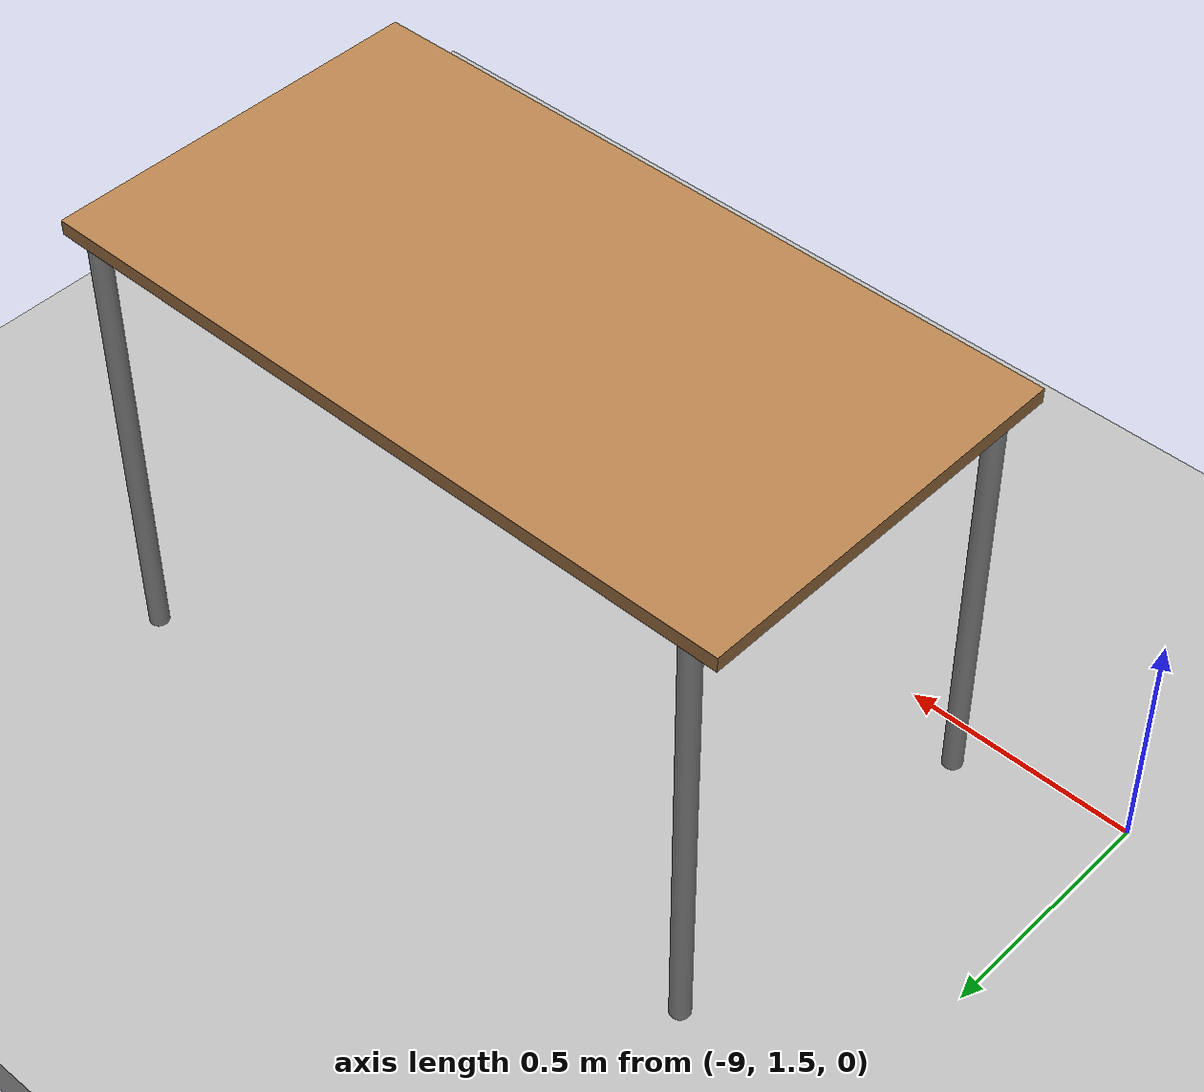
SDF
<sdf version="1.6">
 <world name="hospital">
  <include><uri>model://sun</uri></include>
  <include><uri>model://ground_plane</uri></include>
  <model name="floor">
   <static>true</static>
   <link name="link"><visual name="visual"><geometry><box><size>30 10 0.1</size></box></geometry></visual></link>
  </model>
  <model name="wall_left">
   <static>true</static>
   <pose>0 5 1 0 0 0</pose>
   <link name="link">
    <collision name="collision"><geometry><box><size>30 0.2 2.5</size></box></geometry></collision>
   </link>
  </model>
  <model name="wall_right">
   <static>true</static>
   <pose>0 -5 1 0 0 0</pose>
   <link name="link">
    <collision name="collision"><geometry><box><size>30 0.2 2.5</size></box></geometry></collision>
   </link>
  </model>
  <model name="ICU_room">
   <static>true</static>
   <pose>8 2 0 0 0 0</pose>
   <link name="link">
    <collision name="collision"><geometry><box><size>5 4 2.5</size></box></geometry></collision>
   </link>
  </model>
  <model name="pharmacy_room">
   <static>true</static>
   <pose>-8 2 0 0 0 0</pose>
   <link name="link">
    <collision name="collision"><geometry><box><size>5 4 2.5</size></box></geometry></collision>
   </link>
  </model>
  <include><uri>model://table</uri><pose>-8 2 0 0 0 0</pose></include>
  <model name="door">
   <static>true</static>
   <pose>4 0 1 0 0 0</pose>
   <link name="link">
    <collision name="collision"><geometry><box><size>1 0.1 2</size></box></geometry></collision>
   </link>
  </model>
 </world>
</sdf>

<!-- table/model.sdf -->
<sdf version="1.5">
  <model name="table">
    <static>true</static>
    <link name="link">
      <collision name="surface">
        <pose>0 0 1.0 0 0 0</pose>
        <geometry>
          <box>
            <size>1.5 0.8 0.03</size>
          </box>
        </geometry>
        <surface>
          <friction>
            <ode>
              <mu>0.6</mu>
              <mu2>0.6</mu2>
            </ode>
          </friction>
        </surface>
      </collision>
      <visual name="visual1">
        <pose>0 0 1.0 0 0 0</pose>
        <geometry>
          <box>
            <size>1.5 0.8 0.03</size>
          </box>
        </geometry>
        <material>
          <script>
            <uri>model://media/materials/scripts/gazebo.material</uri>
            <name>Gazebo/Wood</name>
          </script>
        </material>
      </visual>
      <collision name="front_left_leg">
        <pose>0.68 0.38 0.5 0 0 0</pose>
        <geometry>
          <cylinder>
            <radius>0.02</radius>
            <length>1.0</length>
          </cylinder>
        </geometry>
      </collision>
      <visual name="front_left_leg">
        <pose>0.68 0.38 0.5 0 0 0</pose>
        <geometry>
          <cylinder>
            <radius>0.02</radius>
            <length>1.0</length>
          </cylinder>
        </geometry>
        <material>
          <script>
            <uri>model://media/materials/scripts/gazebo.material</uri>
            <name>Gazebo/Grey</name>
          </script>
        </material>
      </visual>
      <collision name="front_right_leg">
        <pose>0.68 -0.38 0.5 0 0 0</pose>
        <geometry>
          <cylinder>
            <radius>0.02</radius>
            <length>1.0</length>
          </cylinder>
        </geometry>
      </collision>
      <visual name="front_right_leg">
        <pose>0.68 -0.38 0.5 0 0 0</pose>
        <geometry>
          <cylinder>
            <radius>0.02</radius>
            <length>1.0</length>
          </cylinder>
        </geometry>
        <material>
          <script>
            <uri>model://media/materials/scripts/gazebo.material</uri>
            <name>Gazebo/Grey</name>
          </script>
        </material>
      </visual>
      <collision name="back_right_leg">
        <pose>-0.68 -0.38 0.5 0 0 0</pose>
        <geometry>
          <cylinder>
            <radius>0.02</radius>
            <length>1.0</length>
          </cylinder>
        </geometry>
      </collision>
      <visual name="back_right_leg">
        <pose>-0.68 -0.38 0.5 0 0 0</pose>
        <geometry>
          <cylinder>
            <radius>0.02</radius>
            <length>1.0</length>
          </cylinder>
        </geometry>
        <material>
          <script>
            <uri>model://media/materials/scripts/gazebo.material</uri>
            <name>Gazebo/Grey</name>
          </script>
        </material>
      </visual>
      <collision name="back_left_leg">
        <pose>-0.68 0.38 0.5 0 0 0</pose>
        <geometry>
          <cylinder>
            <radius>0.02</radius>
            <length>1.0</length>
          </cylinder>
        </geometry>
      </collision>
      <visual name="back_left_leg">
        <pose>-0.68 0.38 0.5 0 0 0</pose>
        <geometry>
          <cylinder>
            <radius>0.02</radius>
            <length>1.0</length>
          </cylinder>
        </geometry>
        <material>
          <script>
            <uri>model://media/materials/scripts/gazebo.material</uri>
            <name>Gazebo/Grey</name>
          </script>
        </material>
      </visual>
    </link>
  </model>
</sdf>
